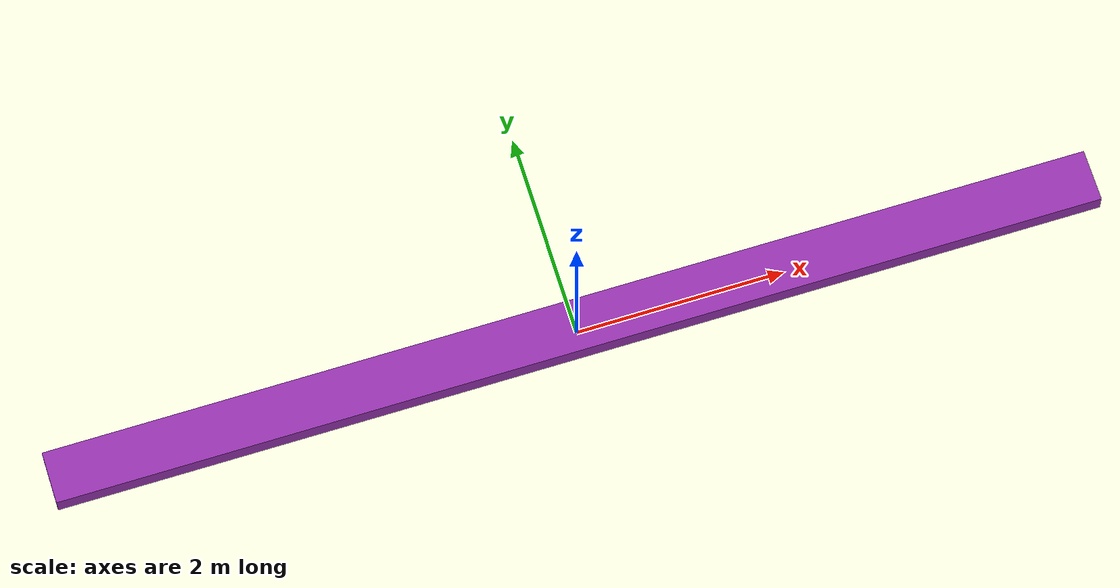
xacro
<?xml version="1.0"?>
<robot name="conveyor_gazebo" xmlns:xacro="http://www.ros.org/wiki/xacro">

    <xacro:property name="prefix" value="belt" />
    <xacro:property name="parent_link" value="world" />
    <xacro:property name="x_wrt_parent" value="0.0" />
    <xacro:property name="y_wrt_parent" value="0.0" />
    <xacro:property name="z_wrt_parent" value="0.0" />
    <xacro:property name="roll_wrt_parent" value="0.0" />
    <xacro:property name="pitch_wrt_parent" value="0.0" />
    <xacro:property name="yaw_wrt_parent" value="0.0" />
    <xacro:property name="conveyor_size_x" value="10.0" />
    <xacro:property name="conveyor_size_y" value="0.5" />
    <xacro:property name="conveyor_size_z" value="0.2" />
    <xacro:property name="conveyor_pos_x" value="0.0" />
    <xacro:property name="conveyor_pos_y" value="0.0" />
    <xacro:property name="conveyor_pos_z" value="0.05" />

    <xacro:property name="PI" value="3.1415926535897931" />

    <xacro:macro name="conveyor_belt" params="prefix
                                              parent_link
                                              x_wrt_parent
                                              y_wrt_parent
                                              z_wrt_parent
                                              roll_wrt_parent
                                              pitch_wrt_parent
                                              yaw_wrt_parent
                                              conveyor_size_x
                                              conveyor_size_y
                                              conveyor_size_z">

        <joint name="fixed" type="fixed">
            <parent link="${parent_link}"/>
            <child link="${prefix}_visual"/>
            <origin xyz="${x_wrt_parent} ${y_wrt_parent} ${z_wrt_parent + conveyor_size_z / 2}"
                    rpy="${roll_wrt_parent} ${pitch_wrt_parent} ${yaw_wrt_parent}" />
        </joint>

        <link name="${prefix}_visual">
            <collision>
                <origin xyz="0.0 0.0 0.0" rpy="0 0 0"/>
                <geometry>
                    <box size="${conveyor_size_x} ${conveyor_size_y} ${conveyor_size_z}"/>
                </geometry>
            </collision>

            <visual>
                <origin xyz="0.0 0.0 0.0" rpy="0 0 0"/>
                <geometry>
                    <box size="${conveyor_size_x} ${conveyor_size_y} ${conveyor_size_z}"/>
                </geometry>
                <material name="purple" />
            </visual>

            <inertial>
                <origin xyz="0.0 0.0 0.0" rpy="0 0 0"/>
                <mass value="1"/>
                <inertia
                    ixx="1.0" ixy="0.0" ixz="0.0"
                    iyy="1.0" iyz="0.0"
                    izz="1.0"/>
            </inertial>
        </link>

        <link name="${prefix}_moving">
            <inertial>
                <origin xyz="0.0 0.0 0.0" rpy="0 0 0"/>
                <mass value="1"/>
                <inertia
                    ixx="1.0" ixy="0.0" ixz="0.0"
                    iyy="1.0" iyz="0.0"
                    izz="1.0"/>
            </inertial>

            <collision>
                <origin xyz="${conveyor_pos_x} ${conveyor_pos_y} ${conveyor_pos_z}" rpy="0 0 0"/>
                <geometry>
                    <box size="${conveyor_size_x} ${conveyor_size_y} ${conveyor_size_z}"/>
                </geometry>
            </collision>
        </link>

        <joint name="belt_joint" type="prismatic">
            <origin xyz="0.0 0.0 0.05" rpy="0 0 0"/>
            <parent link="${prefix}_visual"/>
            <child link="${prefix}_moving"/>
            <axis xyz="1 0 0"/>
            <limit lower="0.0" upper="1.0" effort="1000" velocity="1000"/>
        </joint>

        <gazebo>
            <plugin name="${prefix}_conveyor_plugin" filename="libROSConveyorBeltPlugin.so">
                <robot_namespace>/</robot_namespace>
                <link>${prefix}_moving</link>
                <power>0</power>
                <max_velocity>1.0</max_velocity>
            </plugin>
            <material>Gazebo/Purple</material>
        </gazebo>

    </xacro:macro>

    <link name="${parent_link}" />

    <xacro:conveyor_belt prefix="${prefix}"
                         parent_link="${parent_link}"
                         x_wrt_parent="${x_wrt_parent}"
                         y_wrt_parent="${y_wrt_parent}"
                         z_wrt_parent="${z_wrt_parent}"
                         roll_wrt_parent="${roll_wrt_parent}"
                         pitch_wrt_parent="${pitch_wrt_parent}"
                         yaw_wrt_parent="${yaw_wrt_parent}"
                         conveyor_size_x="${conveyor_size_x}"
                         conveyor_size_y="${conveyor_size_y}"
                         conveyor_size_z="${conveyor_size_z}" >
    </xacro:conveyor_belt>

</robot>
